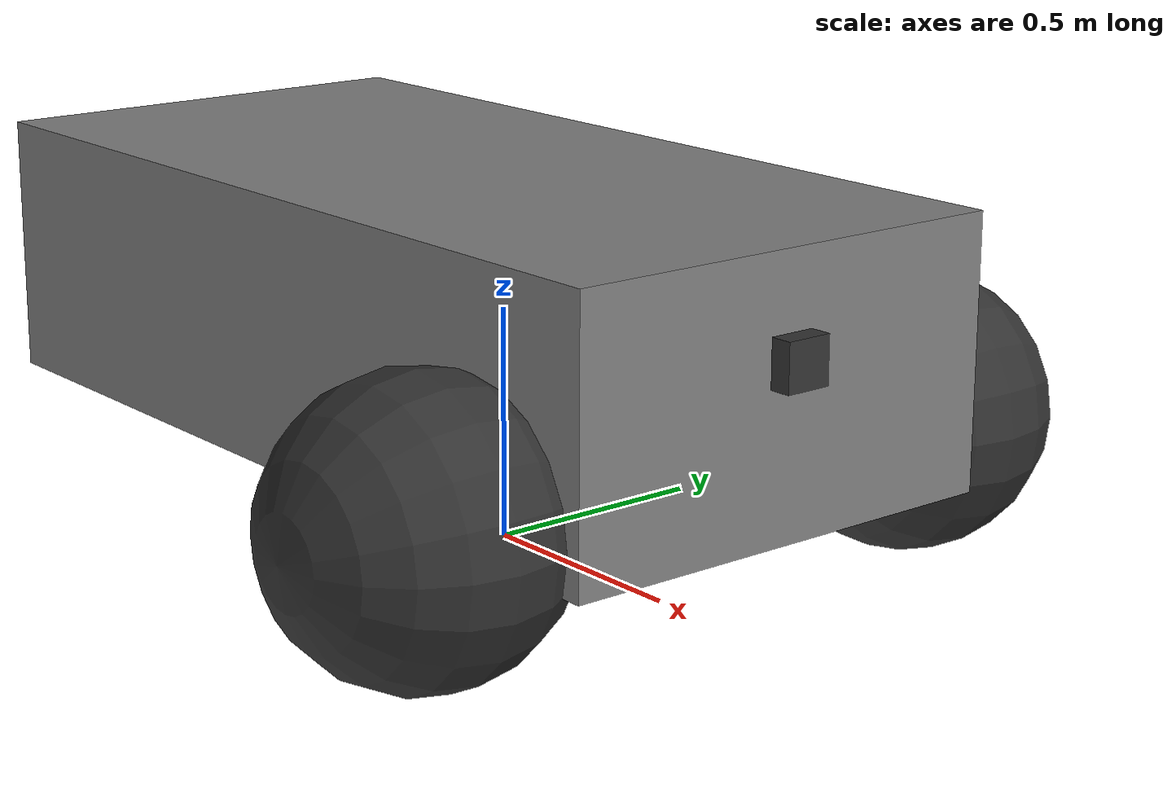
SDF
<?xml version="1.0"?>
<sdf version="1.6">
	<model name='simple_robot'>
		<pose>0 0 0.325 0 -0 0</pose>
		<link name='chassis'>
			<pose>-0.151427 -0 0.175 0 -0 0</pose>
			<inertial>
				<mass>1.14395</mass>
				<inertia>
					<ixx>0.126164</ixx>
					<ixy>0</ixy>
					<ixz>0</ixz>
					<iyy>0.416519</iyy>
					<iyz>0</iyz>
					<izz>0.481014</izz>
				</inertia>
			</inertial>
			<visual name='visual'>
				<geometry>
					<box>
						<size>2.01142 1 0.568726</size>
					</box>
				</geometry>
				<material>
					<ambient>0.5 0.5 0.5 1</ambient>
					<diffuse>0.5 0.5 0.5 1</diffuse>
					<specular>0.5 0.5 0.5 1</specular>
				</material>
			</visual>
			<collision name='collision'>
				<geometry>
					<box>
						<size>2.01142 1 0.568726</size>
					</box>
				</geometry>
			</collision>
		</link>

		<link name='left_wheel'>
			<pose>0.554283 0.625029 -0.025 -1.5707 0 0</pose>
			<inertial>
				<mass>2</mass>
				<inertia>
					<ixx>0.145833</ixx>
					<ixy>0</ixy>
					<ixz>0</ixz>
					<iyy>0.145833</iyy>
					<iyz>0</iyz>
					<izz>0.125</izz>
				</inertia>
			</inertial>
			<visual name='visual'>
				<geometry>
					<sphere>
						<radius>0.3</radius>
					</sphere>
				</geometry>
				<material>
					<ambient>0.2 0.2 0.2 1</ambient>
					<diffuse>0.2 0.2 0.2 1</diffuse>
					<specular>0.2 0.2 0.2 1</specular>
				</material>
			</visual>
			<collision name='collision'>
				<geometry>
					<sphere>
						<radius>0.3</radius>
					</sphere>
				</geometry>
			</collision>
		</link>

		<link name='right_wheel'>
			<pose>0.554282 -0.625029 -0.025 -1.5707 0 0</pose>
			<inertial>
				<mass>2</mass>
				<inertia>
					<ixx>0.145833</ixx>
					<ixy>0</ixy>
					<ixz>0</ixz>
					<iyy>0.145833</iyy>
					<iyz>0</iyz>
					<izz>0.125</izz>
				</inertia>
			</inertial>
			<visual name='visual'>
				<geometry>
					<sphere>
						<radius>0.3</radius>
					</sphere>
				</geometry>
				<material>
					<ambient>0.2 0.2 0.2 1</ambient>
					<diffuse>0.2 0.2 0.2 1</diffuse>
					<specular>0.2 0.2 0.2 1</specular>
				</material>
			</visual>
			<collision name='collision'>
				<geometry>
					<sphere>
						<radius>0.3</radius>
					</sphere>
				</geometry>
			</collision>
		</link>

		<link name='caster'>
			<pose>-0.957138 -0 -0.125 0 -0 0</pose>
			<inertial>
				<mass>1</mass>
				<inertia>
					<ixx>0.1</ixx>
					<ixy>0</ixy>
					<ixz>0</ixz>
					<iyy>0.1</iyy>
					<iyz>0</iyz>
					<izz>0.1</izz>
				</inertia>
			</inertial>
			<visual name='visual'>
				<geometry>
					<sphere>
						<radius>0.2</radius>
					</sphere>
				</geometry>
				<material>
					<ambient>0.2 0.2 0.2 1</ambient>
					<diffuse>0.2 0.2 0.2 1</diffuse>
					<specular>0.2 0.2 0.2 1</specular>
				</material>
			</visual>
			<collision name='collision'>
				<geometry>
					<sphere>
						<radius>0.2</radius>
					</sphere>
				</geometry>
			</collision>
		</link>

		<link name="camera">
			<pose>0.85 0 0.25 0 0 0</pose>
			<inertial>
				<mass>0.1</mass>
				<inertia>
					<ixx>0.000166667</ixx>
					<iyy>0.000166667</iyy>
					<izz>0.000166667</izz>
				</inertia>
			</inertial>
			<collision name="collision">
				<geometry>
					<box>
						<size>0.1 0.1 0.1</size>
					</box>
				</geometry>
			</collision>
			<visual name="visual">
				<geometry>
					<box>
						<size>0.1 0.1 0.1</size>
					</box>
				</geometry>
				<material>
					<ambient>0.2 0.2 0.2 1</ambient>
					<diffuse>0.2 0.2 0.2 1</diffuse>
					<specular>0.2 0.2 0.2 1</specular>
				</material>
			</visual>
			<sensor name="camera" type="camera">
				<camera>
					<horizontal_fov>1.047</horizontal_fov>
					<image>
						<width>320</width>
						<height>240</height>
					</image>
					<clip>
						<near>0.1</near>
						<far>100</far>
					</clip>
				</camera>
				<always_on>1</always_on>
				<update_rate>30</update_rate>
				<visualize>true</visualize>
				<topic>camera</topic>
			</sensor>
		</link>

		<joint name='left_wheel_joint' type='revolute'>
			<parent>chassis</parent>
			<child>left_wheel</child>
			<axis>
				<xyz>0 0 1</xyz>
				<limit>
					<lower>-1.79769e+308</lower>
					<upper>1.79769e+308</upper>
				</limit>
			</axis>
		</joint>

		<joint name='right_wheel_joint' type='revolute'>
			<parent>chassis</parent>
			<child>right_wheel</child>
			<axis>
				<xyz>0 0 1</xyz>
				<limit>
					<lower>-1.79769e+308</lower>
					<upper>1.79769e+308</upper>
				</limit>
			</axis>
		</joint>

		<joint name='caster_wheel' type='ball'>
			<parent>chassis</parent>
			<child>caster</child>
		</joint>

		<joint name='camera_joint' type='fixed'>
			<parent>chassis</parent>
			<child>camera</child>
		</joint>

		<!--diff drive plugin-->
		<plugin
			filename="gz-sim-diff-drive-system"
			name="gz::sim::systems::DiffDrive">
			<left_joint>left_wheel_joint</left_joint>
			<right_joint>right_wheel_joint</right_joint>
			<wheel_separation>1.25</wheel_separation>
			<wheel_radius>0.3</wheel_radius>
			<odom_publish_frequency>1</odom_publish_frequency>
			<topic>cmd_vel</topic>
		</plugin>
	</model>
</sdf>
